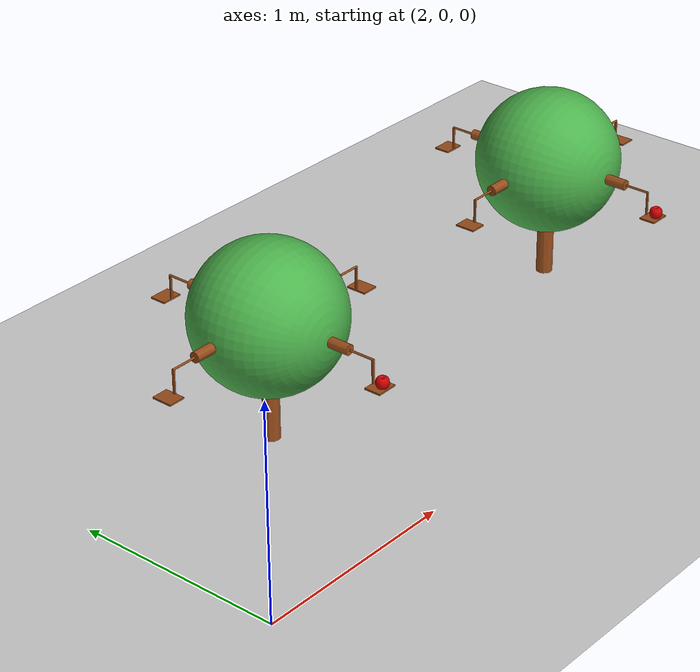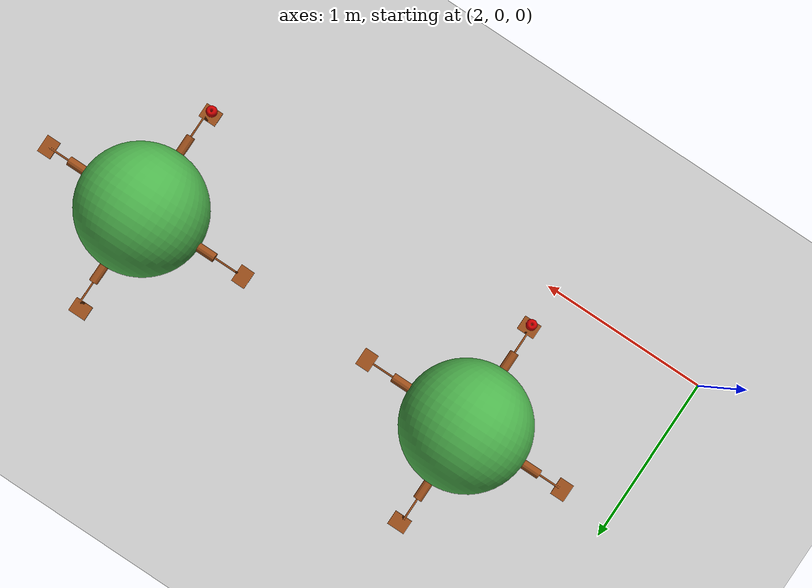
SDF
<sdf version="1.7">
 <world name="default">
  <light name="sun" type="directional">
   <pose>0 0 10 0 -0 0</pose>
   <diffuse>0.8 0.8 0.8 1</diffuse>
   <specular>0.2 0.2 0.2 1</specular>
   <attenuation>
    <range>1000</range>
    <constant>0.9</constant>
    <linear>0.01</linear>
    <quadratic>0.001</quadratic>
   </attenuation>
   <direction>-0.5 0.1 -0.9</direction>
   <spot><inner_angle>0</inner_angle><outer_angle>0</outer_angle><falloff>0</falloff></spot>
  </light>
  <model name="ground_plane">
   <static>1</static>
   <link name="link">
    <collision name="collision">
     <geometry><plane><normal>0 0 1</normal><size>100 100</size></plane></geometry>
     <surface><friction><ode><mu>100</mu><mu2>50</mu2></ode></friction></surface>
    </collision>
    <visual name="visual">
     <cast_shadows>0</cast_shadows>
     <geometry><plane><normal>0 0 1</normal><size>100 100</size></plane></geometry>
     <material>
      <script><uri>file://media/materials/scripts/gazebo.material</uri><name>Gazebo/Grey</name></script>
     </material>
    </visual>
   </link>
  </model>
  <gravity>0 0 -9.8</gravity>
  <magnetic_field>6e-06 2.3e-05 -4.2e-05</magnetic_field>
  <atmosphere type="adiabatic"/>
  <physics type="ode">
   <max_step_size>0.001</max_step_size>
   <real_time_factor>1</real_time_factor>
   <real_time_update_rate>1000</real_time_update_rate>
  </physics>
  <scene><ambient>0.4 0.4 0.4 1</ambient><background>0.7 0.7 0.7 1</background><shadows>1</shadows></scene>
  <spherical_coordinates>
   <surface_model>EARTH_WGS84</surface_model>
   <latitude_deg>0</latitude_deg>
   <longitude_deg>0</longitude_deg>
   <elevation>0</elevation>
   <heading_deg>0</heading_deg>
  </spherical_coordinates>
  <model name="apple_body_0">
   <link name="base_link">
    <inertial>
     <mass>0.01</mass>
     <inertia>
      <ixx>3.7428e-05</ixx>
      <ixy>-2.7676e-37</ixy>
      <ixz>3.5154e-26</ixz>
      <iyy>3.7428e-05</iyy>
      <iyz>2.8705e-10</iyz>
      <izz>4.1939e-05</izz>
     </inertia>
    </inertial>
    <collision name="base_link_collision">
     <geometry><mesh><scale>1 1 1</scale><uri>model://apple_body/meshes/base_link.STL</uri></mesh></geometry>
    </collision>
    <visual name="base_link_visual">
     <geometry><mesh><scale>1 1 1</scale><uri>model://apple_body/meshes/base_link.STL</uri></mesh></geometry>
     <material>
      <ambient>0.2 0 0 1</ambient>
      <diffuse>0.8 0 0 1</diffuse>
      <specular>0.3 0.3 0.3 0</specular>
      <emissive>0.1 0 0 1</emissive>
     </material>
    </visual>
   </link>
   <pose>5.00087 0.274834 0.512468 0.000466 -0.000292 0.205836</pose>
  </model>
  <model name="apple_body">
   <link name="base_link">
    <inertial>
     <mass>0.01</mass>
     <inertia>
      <ixx>3.7428e-05</ixx>
      <ixy>-2.7676e-37</ixy>
      <ixz>3.5154e-26</ixz>
      <iyy>3.7428e-05</iyy>
      <iyz>2.8705e-10</iyz>
      <izz>4.1939e-05</izz>
     </inertia>
    </inertial>
    <collision name="base_link_collision">
     <geometry><mesh><scale>1 1 1</scale><uri>model://apple_body/meshes/base_link.STL</uri></mesh></geometry>
    </collision>
    <visual name="base_link_visual">
     <geometry><mesh><scale>1 1 1</scale><uri>model://apple_body/meshes/base_link.STL</uri></mesh></geometry>
     <material>
      <ambient>0.2 0 0 1</ambient>
      <diffuse>0.8 0 0 1</diffuse>
      <specular>0.3 0.3 0.3 0</specular>
      <emissive>0.1 0 0 1</emissive>
     </material>
    </visual>
   </link>
   <pose>3.00005 0.274986 0.512473 -0.000188 -6.9e-05 0.012191</pose>
  </model>
  <model name="tree_body">
   <static>1</static>
   <link name="base_link">
    <inertial>
     <pose>0 -5e-06 0.481863 0 -0 0</pose>
     <mass>1.26388</mass>
     <inertia>
      <ixx>0.0787565</ixx>
      <ixy>-8.58803e-08</ixy>
      <ixz>-3.58298e-08</ixz>
      <iyy>0.0787579</iyy>
      <iyz>4.74617e-07</iyz>
      <izz>0.0660579</izz>
     </inertia>
    </inertial>
    <collision name="base_link_collision">
     <geometry><mesh><scale>1 1 1</scale><uri>model://tree_body/meshes/base_link.STL</uri></mesh></geometry>
    </collision>
    <collision name="base_link_fixed_joint_lump__branch1_collision_1">
     <pose>0 -0.610343 0.4875 1.5708 -0 0</pose>
     <geometry><mesh><scale>1 1 1</scale><uri>model://tree_body/meshes/branch1.STL</uri></mesh></geometry>
    </collision>
    <collision name="base_link_fixed_joint_lump__branch2_collision_2">
     <pose>0.610343 0 0.4875 1.5708 -0 1.5708</pose>
     <geometry><mesh><scale>1 1 1</scale><uri>model://tree_body/meshes/branch2.STL</uri></mesh></geometry>
    </collision>
    <collision name="base_link_fixed_joint_lump__branch3_collision_3">
     <pose>0 0.610343 0.4875 1.5708 -0 -3.14159</pose>
     <geometry><mesh><scale>1 1 1</scale><uri>model://tree_body/meshes/branch3.STL</uri></mesh></geometry>
    </collision>
    <collision name="base_link_fixed_joint_lump__branch4_collision_4">
     <pose>-0.610343 0 0.4875 1.5708 0 -1.5708</pose>
     <geometry><mesh><scale>1 1 1</scale><uri>model://tree_body/meshes/branch4.STL</uri></mesh></geometry>
    </collision>
    <collision name="base_link_fixed_joint_lump__leaves_collision_5">
     <pose>0 0 0.6 0 -0 0</pose>
     <geometry><mesh><scale>1 1 1</scale><uri>model://tree_body/meshes/leaves.STL</uri></mesh></geometry>
    </collision>
    <visual name="base_link_visual">
     <geometry><mesh><scale>1 1 1</scale><uri>model://tree_body/meshes/base_link.STL</uri></mesh></geometry>
     <material>
      <ambient>0.3 0.1 0 1</ambient>
      <diffuse>0.6 0.3 0.1 1</diffuse>
      <specular>0.1 0.1 0.1 0</specular>
      <emissive>0.05 0.02 0.01 1</emissive>
     </material>
    </visual>
    <visual name="base_link_fixed_joint_lump__branch1_visual_1">
     <pose>0 -0.610343 0.4875 1.5708 -0 0</pose>
     <geometry><mesh><scale>1 1 1</scale><uri>model://tree_body/meshes/branch1.STL</uri></mesh></geometry>
     <material>
      <ambient>0.3 0.1 0 1</ambient>
      <diffuse>0.6 0.3 0.1 1</diffuse>
      <specular>0.1 0.1 0.1 0</specular>
      <emissive>0.05 0.02 0.01 1</emissive>
     </material>
    </visual>
    <visual name="base_link_fixed_joint_lump__branch2_visual_2">
     <pose>0.610343 0 0.4875 1.5708 -0 1.5708</pose>
     <geometry><mesh><scale>1 1 1</scale><uri>model://tree_body/meshes/branch2.STL</uri></mesh></geometry>
     <material>
      <ambient>0.3 0.1 0 1</ambient>
      <diffuse>0.6 0.3 0.1 1</diffuse>
      <specular>0.1 0.1 0.1 0</specular>
      <emissive>0.05 0.02 0.01 1</emissive>
     </material>
    </visual>
    <visual name="base_link_fixed_joint_lump__branch3_visual_3">
     <pose>0 0.610343 0.4875 1.5708 -0 -3.14159</pose>
     <geometry><mesh><scale>1 1 1</scale><uri>model://tree_body/meshes/branch3.STL</uri></mesh></geometry>
     <material>
      <ambient>0.3 0.1 0 1</ambient>
      <diffuse>0.6 0.3 0.1 1</diffuse>
      <specular>0.1 0.1 0.1 0</specular>
      <emissive>0.05 0.02 0.01 1</emissive>
     </material>
    </visual>
    <visual name="base_link_fixed_joint_lump__branch4_visual_4">
     <pose>-0.610343 0 0.4875 1.5708 0 -1.5708</pose>
     <geometry><mesh><scale>1 1 1</scale><uri>model://tree_body/meshes/branch4.STL</uri></mesh></geometry>
     <material>
      <ambient>0.3 0.1 0 1</ambient>
      <diffuse>0.6 0.3 0.1 1</diffuse>
      <specular>0.1 0.1 0.1 0</specular>
      <emissive>0.05 0.02 0.01 1</emissive>
     </material>
    </visual>
    <visual name="base_link_fixed_joint_lump__leaves_visual_5">
     <pose>0 0 0.6 0 -0 0</pose>
     <geometry><mesh><scale>1 1 1</scale><uri>model://tree_body/meshes/leaves.STL</uri></mesh></geometry>
     <material>
      <ambient>0.1 0.4 0.1 1</ambient>
      <diffuse>0.3 0.7 0.3 1</diffuse>
      <specular>0.2 0.2 0.2 0</specular>
      <emissive>0.05 0.2 0.05 1</emissive>
     </material>
    </visual>
   </link>
   <frame name="branch1_joint" attached_to="base_link"><pose>0 -0.610343 0.4875 1.5708 -0 0</pose></frame>
   <frame name="branch1" attached_to="branch1_joint"/>
   <frame name="branch2_joint" attached_to="base_link"><pose>0.610343 0 0.4875 1.5708 -0 1.5708</pose></frame>
   <frame name="branch2" attached_to="branch2_joint"/>
   <frame name="branch3_joint" attached_to="base_link"><pose>0 0.610343 0.4875 1.5708 -0 -3.14159</pose></frame>
   <frame name="branch3" attached_to="branch3_joint"/>
   <frame name="branch4_joint" attached_to="base_link"><pose>-0.610343 0 0.4875 1.5708 0 -1.5708</pose></frame>
   <frame name="branch4" attached_to="branch4_joint"/>
   <frame name="leaves_joint" attached_to="base_link"><pose>0 0 0.6 0 -0 0</pose></frame>
   <frame name="leaves" attached_to="leaves_joint"/>
   <pose>5 0.899999 -9e-06 2.4e-05 -1.6e-05 1e-05</pose>
  </model>
  <model name="tree_body_clone">
   <static>1</static>
   <link name="base_link">
    <inertial>
     <pose>0 -5e-06 0.481863 0 -0 0</pose>
     <mass>1.26388</mass>
     <inertia>
      <ixx>0.0787565</ixx>
      <ixy>-8.58803e-08</ixy>
      <ixz>-3.58298e-08</ixz>
      <iyy>0.0787579</iyy>
      <iyz>4.74617e-07</iyz>
      <izz>0.0660579</izz>
     </inertia>
    </inertial>
    <collision name="base_link_collision">
     <geometry><mesh><scale>1 1 1</scale><uri>model://tree_body/meshes/base_link.STL</uri></mesh></geometry>
    </collision>
    <collision name="base_link_fixed_joint_lump__branch1_collision_1">
     <pose>0 -0.610343 0.4875 1.5708 -0 0</pose>
     <geometry><mesh><scale>1 1 1</scale><uri>model://tree_body/meshes/branch1.STL</uri></mesh></geometry>
    </collision>
    <collision name="base_link_fixed_joint_lump__branch2_collision_2">
     <pose>0.610343 0 0.4875 1.5708 -0 1.5708</pose>
     <geometry><mesh><scale>1 1 1</scale><uri>model://tree_body/meshes/branch2.STL</uri></mesh></geometry>
    </collision>
    <collision name="base_link_fixed_joint_lump__branch3_collision_3">
     <pose>0 0.610343 0.4875 1.5708 -0 -3.14159</pose>
     <geometry><mesh><scale>1 1 1</scale><uri>model://tree_body/meshes/branch3.STL</uri></mesh></geometry>
    </collision>
    <collision name="base_link_fixed_joint_lump__branch4_collision_4">
     <pose>-0.610343 0 0.4875 1.5708 0 -1.5708</pose>
     <geometry><mesh><scale>1 1 1</scale><uri>model://tree_body/meshes/branch4.STL</uri></mesh></geometry>
    </collision>
    <collision name="base_link_fixed_joint_lump__leaves_collision_5">
     <pose>0 0 0.6 0 -0 0</pose>
     <geometry><mesh><scale>1 1 1</scale><uri>model://tree_body/meshes/leaves.STL</uri></mesh></geometry>
    </collision>
    <visual name="base_link_visual">
     <geometry><mesh><scale>1 1 1</scale><uri>model://tree_body/meshes/base_link.STL</uri></mesh></geometry>
     <material>
      <ambient>0.3 0.1 0 1</ambient>
      <diffuse>0.6 0.3 0.1 1</diffuse>
      <specular>0.1 0.1 0.1 0</specular>
      <emissive>0.05 0.02 0.01 1</emissive>
     </material>
    </visual>
    <visual name="base_link_fixed_joint_lump__branch1_visual_1">
     <pose>0 -0.610343 0.4875 1.5708 -0 0</pose>
     <geometry><mesh><scale>1 1 1</scale><uri>model://tree_body/meshes/branch1.STL</uri></mesh></geometry>
     <material>
      <ambient>0.3 0.1 0 1</ambient>
      <diffuse>0.6 0.3 0.1 1</diffuse>
      <specular>0.1 0.1 0.1 0</specular>
      <emissive>0.05 0.02 0.01 1</emissive>
     </material>
    </visual>
    <visual name="base_link_fixed_joint_lump__branch2_visual_2">
     <pose>0.610343 0 0.4875 1.5708 -0 1.5708</pose>
     <geometry><mesh><scale>1 1 1</scale><uri>model://tree_body/meshes/branch2.STL</uri></mesh></geometry>
     <material>
      <ambient>0.3 0.1 0 1</ambient>
      <diffuse>0.6 0.3 0.1 1</diffuse>
      <specular>0.1 0.1 0.1 0</specular>
      <emissive>0.05 0.02 0.01 1</emissive>
     </material>
    </visual>
    <visual name="base_link_fixed_joint_lump__branch3_visual_3">
     <pose>0 0.610343 0.4875 1.5708 -0 -3.14159</pose>
     <geometry><mesh><scale>1 1 1</scale><uri>model://tree_body/meshes/branch3.STL</uri></mesh></geometry>
     <material>
      <ambient>0.3 0.1 0 1</ambient>
      <diffuse>0.6 0.3 0.1 1</diffuse>
      <specular>0.1 0.1 0.1 0</specular>
      <emissive>0.05 0.02 0.01 1</emissive>
     </material>
    </visual>
    <visual name="base_link_fixed_joint_lump__branch4_visual_4">
     <pose>-0.610343 0 0.4875 1.5708 0 -1.5708</pose>
     <geometry><mesh><scale>1 1 1</scale><uri>model://tree_body/meshes/branch4.STL</uri></mesh></geometry>
     <material>
      <ambient>0.3 0.1 0 1</ambient>
      <diffuse>0.6 0.3 0.1 1</diffuse>
      <specular>0.1 0.1 0.1 0</specular>
      <emissive>0.05 0.02 0.01 1</emissive>
     </material>
    </visual>
    <visual name="base_link_fixed_joint_lump__leaves_visual_5">
     <pose>0 0 0.6 0 -0 0</pose>
     <geometry><mesh><scale>1 1 1</scale><uri>model://tree_body/meshes/leaves.STL</uri></mesh></geometry>
     <material>
      <ambient>0.1 0.4 0.1 1</ambient>
      <diffuse>0.3 0.7 0.3 1</diffuse>
      <specular>0.2 0.2 0.2 0</specular>
      <emissive>0.05 0.2 0.05 1</emissive>
     </material>
    </visual>
   </link>
   <frame name="branch1_joint" attached_to="base_link"><pose>0 -0.610343 0.4875 1.5708 -0 0</pose></frame>
   <frame name="branch1" attached_to="branch1_joint"/>
   <frame name="branch2_joint" attached_to="base_link"><pose>0.610343 0 0.4875 1.5708 -0 1.5708</pose></frame>
   <frame name="branch2" attached_to="branch2_joint"/>
   <frame name="branch3_joint" attached_to="base_link"><pose>0 0.610343 0.4875 1.5708 -0 -3.14159</pose></frame>
   <frame name="branch3" attached_to="branch3_joint"/>
   <frame name="branch4_joint" attached_to="base_link"><pose>-0.610343 0 0.4875 1.5708 0 -1.5708</pose></frame>
   <frame name="branch4" attached_to="branch4_joint"/>
   <frame name="leaves_joint" attached_to="base_link"><pose>0 0 0.6 0 -0 0</pose></frame>
   <frame name="leaves" attached_to="leaves_joint"/>
   <pose>3 0.899989 0 8e-06 -8e-06 0.001535</pose>
  </model>
 </world>
</sdf>
